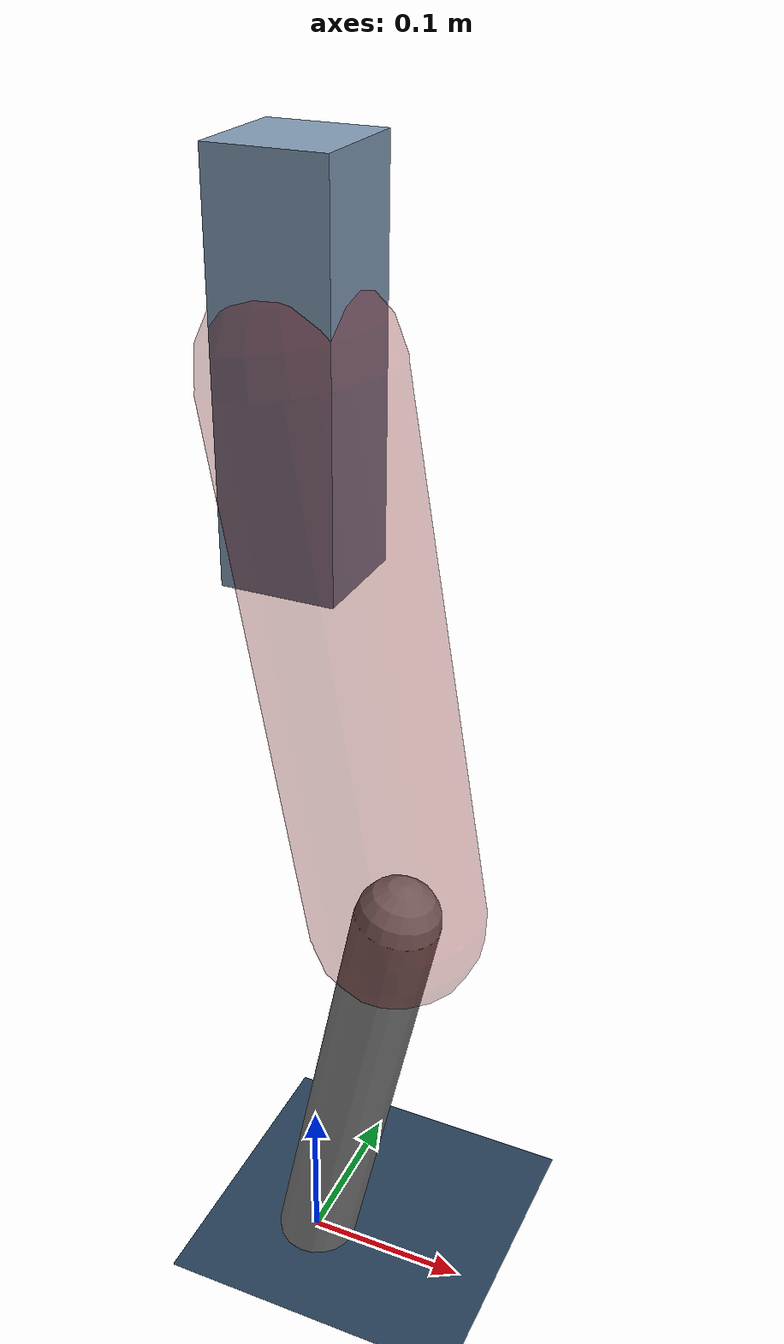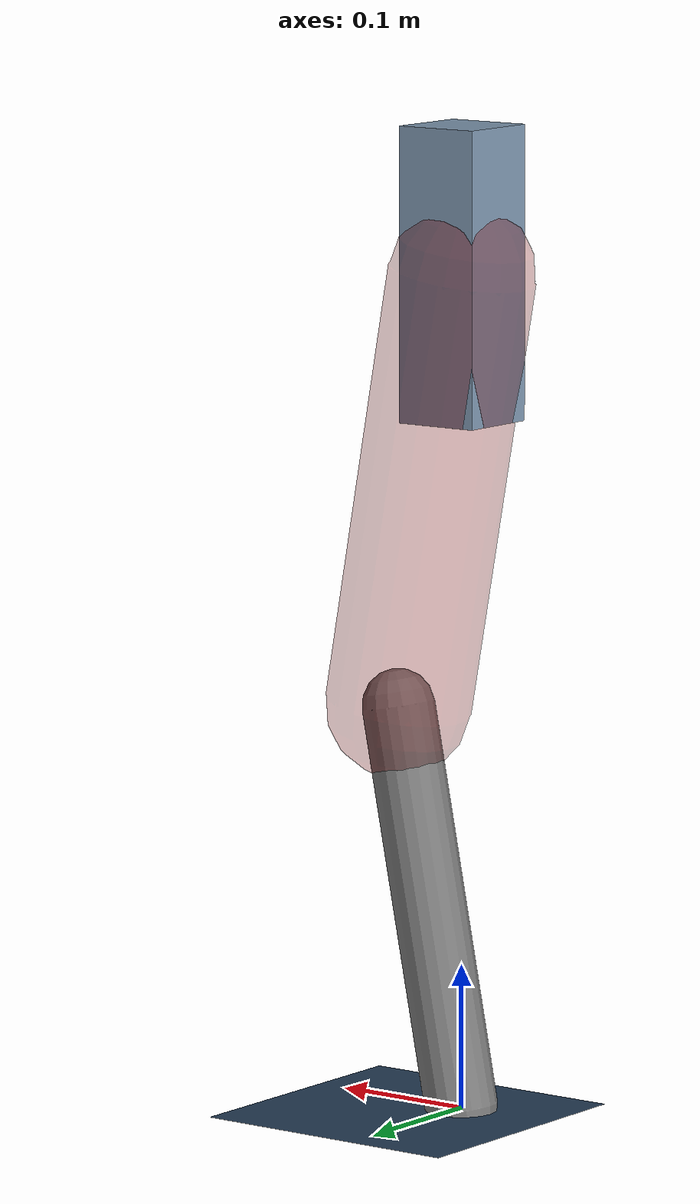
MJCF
<mujoco model="Hopper2D">
	<compiler inertiafromgeom="true" angle="radian" />
	<option timestep="0.001" integrator="implicit" cone="elliptic" solver="Newton" tolerance="1e-10" />

	<default>
		<geom contype="1" conaffinity="1" condim="3" friction="2 0.005 0.0001" solref="0.005 1" />
		<joint limited="true" damping="0.1" />
	</default>

	<asset>
		<texture name="skybox" type="skybox" builtin="gradient" rgb1=".4 .6 .8" rgb2="0 0 0" width="800" height="800" />
		<texture name="grid" type="2d" builtin="checker" rgb1=".1 .2 .3" rgb2=".2 .3 .4" width="300" height="300" mark="edge" markrgb=".2 .3 .4" />
		<material name="ground" texture="grid" texrepeat="1 1" texuniform="true" reflectance="0.1" />
		<material name="leg" rgba="0.5 0.6 0.7 1" />
	</asset>

	<worldbody>

		<geom name="floor" type="plane" size="5 5 0.25" material="ground" />

		<light directional="false" diffuse="0.8 0.8 0.8" specular="0.3 0.3 0.3" pos="0 0 2" dir="0 0 -1" />
		<light mode="targetbodycom" target="base" directional="false" diffuse="0.8 0.8 0.8" specular="0.3 0.3 0.3" pos="0 0 2" dir="0 0 -1" />

		<camera name="fixed" pos="0 -2 1" xyaxes="1 0 0 0 0 1" />
		<camera name="tracking" mode="trackcom" pos="0 -3 1" />

		<body name="root" pos="0 0 0.5735772326561575">
			<joint name="slide_x" type="slide" axis="1 0 0" range="-100 100" />
			<joint name="slide_z" type="slide" axis="0 0 1" range="0 10" />

			<body name="base" pos="0 0 0">
				<geom name="torso" type="box" size="0.03 0.03 0.1" mass="5.718" material="leg" />

				<body name="link1" pos="0 0 0" euler="0 1.392928209869681 0">
					<joint type="hinge" axis="0 -1 0" pos="0 0 0" name="hinge1" limited="true" range="-3.14 3.14" stiffness="0" damping="0.1" />
					<geom name="thigh" type="capsule" fromto="0 0 0 0.30372695712278963 0 0" size="0.05" rgba="0.5 0 0 0.3" mass="0.9988627842315321" />

					<body name="link2" pos="0.30372695712278963 0 0" euler="0 0.3710957473992939 0">
						<joint type="hinge" axis="0 -1 0" pos="0 0 0" name="hinge2" limited="true" range="-3.14 3.14" stiffness="0" damping="0.1" />
						<geom name="shank" type="capsule" fromto="0 0 0 0.27985027553336783 0 0" size="0.025" mass="0.46698022042669424" />

					</body>
				</body>
			</body>
		</body>
	</worldbody>

	<actuator>
		<motor name="torque1" joint="hinge1" ctrlrange="-342.72337303314856 342.72337303314856" ctrllimited="true" gear="1" />
		<motor name="torque2" joint="hinge2" ctrlrange="-193.8181717863227 193.8181717863227" ctrllimited="true" gear="1" />
	</actuator>
</mujoco>
